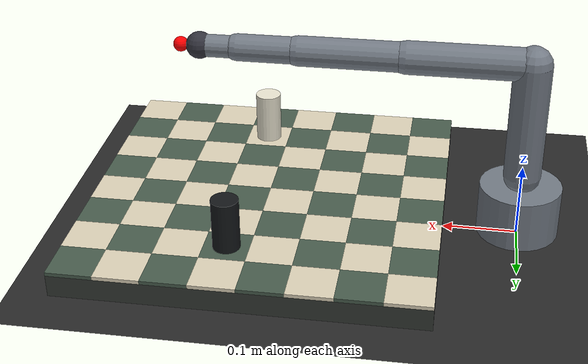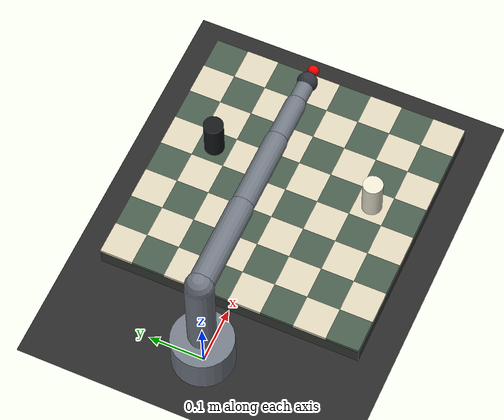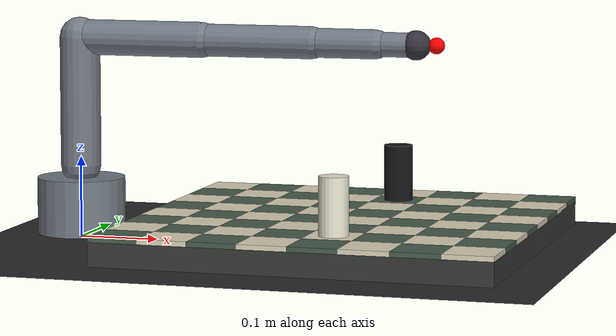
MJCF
<mujoco model="ai_chess_robot">
  <compiler angle="radian" meshdir="." autolimits="true"/>
  <option timestep="0.002" gravity="0 0 -9.81" integrator="implicitfast"/>

  <default>
    <geom friction="0.8 0.02 0.001" density="900"/>
    <joint damping="2.5" armature="0.04"/>
    <position kp="28" kv="7"/>
  </default>

  <asset>
    <material name="board_light" rgba="0.86 0.82 0.72 1"/>
    <material name="board_dark" rgba="0.28 0.36 0.30 1"/>
    <material name="robot_mat" rgba="0.45 0.48 0.52 1"/>
    <material name="piece_white" rgba="0.92 0.90 0.82 1"/>
    <material name="piece_black" rgba="0.08 0.09 0.10 1"/>
  </asset>

  <worldbody>
    <light pos="0 -1 1.5" dir="0 1 -1" diffuse="0.9 0.9 0.9"/>
    <geom name="floor" type="plane" size="1.4 1.4 0.02" rgba="0.16 0.16 0.16 1"/>

    <!--
      체스판은 시각적으로 8x8 칸을 표현하지만, 학습 성능을 위해
      개별 칸에는 복잡한 충돌 메시를 두지 않는다. 충돌은 아래 board_base
      박스 하나로 충분하다.
    -->
    <body name="board" pos="0.34 0 0.02">
      <geom name="board_base" type="box" size="0.24 0.24 0.015" rgba="0.20 0.22 0.20 1"/>

      <geom name="a1" type="box" pos="-0.21 -0.21 0.017" size="0.03 0.03 0.003" material="board_dark"/>
      <geom name="b1" type="box" pos="-0.15 -0.21 0.017" size="0.03 0.03 0.003" material="board_light"/>
      <geom name="c1" type="box" pos="-0.09 -0.21 0.017" size="0.03 0.03 0.003" material="board_dark"/>
      <geom name="d1" type="box" pos="-0.03 -0.21 0.017" size="0.03 0.03 0.003" material="board_light"/>
      <geom name="e1" type="box" pos="0.03 -0.21 0.017" size="0.03 0.03 0.003" material="board_dark"/>
      <geom name="f1" type="box" pos="0.09 -0.21 0.017" size="0.03 0.03 0.003" material="board_light"/>
      <geom name="g1" type="box" pos="0.15 -0.21 0.017" size="0.03 0.03 0.003" material="board_dark"/>
      <geom name="h1" type="box" pos="0.21 -0.21 0.017" size="0.03 0.03 0.003" material="board_light"/>
      <geom name="a2" type="box" pos="-0.21 -0.15 0.017" size="0.03 0.03 0.003" material="board_light"/>
      <geom name="b2" type="box" pos="-0.15 -0.15 0.017" size="0.03 0.03 0.003" material="board_dark"/>
      <geom name="c2" type="box" pos="-0.09 -0.15 0.017" size="0.03 0.03 0.003" material="board_light"/>
      <geom name="d2" type="box" pos="-0.03 -0.15 0.017" size="0.03 0.03 0.003" material="board_dark"/>
      <geom name="e2" type="box" pos="0.03 -0.15 0.017" size="0.03 0.03 0.003" material="board_light"/>
      <geom name="f2" type="box" pos="0.09 -0.15 0.017" size="0.03 0.03 0.003" material="board_dark"/>
      <geom name="g2" type="box" pos="0.15 -0.15 0.017" size="0.03 0.03 0.003" material="board_light"/>
      <geom name="h2" type="box" pos="0.21 -0.15 0.017" size="0.03 0.03 0.003" material="board_dark"/>
      <geom name="a3" type="box" pos="-0.21 -0.09 0.017" size="0.03 0.03 0.003" material="board_dark"/>
      <geom name="b3" type="box" pos="-0.15 -0.09 0.017" size="0.03 0.03 0.003" material="board_light"/>
      <geom name="c3" type="box" pos="-0.09 -0.09 0.017" size="0.03 0.03 0.003" material="board_dark"/>
      <geom name="d3" type="box" pos="-0.03 -0.09 0.017" size="0.03 0.03 0.003" material="board_light"/>
      <geom name="e3" type="box" pos="0.03 -0.09 0.017" size="0.03 0.03 0.003" material="board_dark"/>
      <geom name="f3" type="box" pos="0.09 -0.09 0.017" size="0.03 0.03 0.003" material="board_light"/>
      <geom name="g3" type="box" pos="0.15 -0.09 0.017" size="0.03 0.03 0.003" material="board_dark"/>
      <geom name="h3" type="box" pos="0.21 -0.09 0.017" size="0.03 0.03 0.003" material="board_light"/>
      <geom name="a4" type="box" pos="-0.21 -0.03 0.017" size="0.03 0.03 0.003" material="board_light"/>
      <geom name="b4" type="box" pos="-0.15 -0.03 0.017" size="0.03 0.03 0.003" material="board_dark"/>
      <geom name="c4" type="box" pos="-0.09 -0.03 0.017" size="0.03 0.03 0.003" material="board_light"/>
      <geom name="d4" type="box" pos="-0.03 -0.03 0.017" size="0.03 0.03 0.003" material="board_dark"/>
      <geom name="e4" type="box" pos="0.03 -0.03 0.017" size="0.03 0.03 0.003" material="board_light"/>
      <geom name="f4" type="box" pos="0.09 -0.03 0.017" size="0.03 0.03 0.003" material="board_dark"/>
      <geom name="g4" type="box" pos="0.15 -0.03 0.017" size="0.03 0.03 0.003" material="board_light"/>
      <geom name="h4" type="box" pos="0.21 -0.03 0.017" size="0.03 0.03 0.003" material="board_dark"/>
      <geom name="a5" type="box" pos="-0.21 0.03 0.017" size="0.03 0.03 0.003" material="board_dark"/>
      <geom name="b5" type="box" pos="-0.15 0.03 0.017" size="0.03 0.03 0.003" material="board_light"/>
      <geom name="c5" type="box" pos="-0.09 0.03 0.017" size="0.03 0.03 0.003" material="board_dark"/>
      <geom name="d5" type="box" pos="-0.03 0.03 0.017" size="0.03 0.03 0.003" material="board_light"/>
      <geom name="e5" type="box" pos="0.03 0.03 0.017" size="0.03 0.03 0.003" material="board_dark"/>
      <geom name="f5" type="box" pos="0.09 0.03 0.017" size="0.03 0.03 0.003" material="board_light"/>
      <geom name="g5" type="box" pos="0.15 0.03 0.017" size="0.03 0.03 0.003" material="board_dark"/>
      <geom name="h5" type="box" pos="0.21 0.03 0.017" size="0.03 0.03 0.003" material="board_light"/>
      <geom name="a6" type="box" pos="-0.21 0.09 0.017" size="0.03 0.03 0.003" material="board_light"/>
      <geom name="b6" type="box" pos="-0.15 0.09 0.017" size="0.03 0.03 0.003" material="board_dark"/>
      <geom name="c6" type="box" pos="-0.09 0.09 0.017" size="0.03 0.03 0.003" material="board_light"/>
      <geom name="d6" type="box" pos="-0.03 0.09 0.017" size="0.03 0.03 0.003" material="board_dark"/>
      <geom name="e6" type="box" pos="0.03 0.09 0.017" size="0.03 0.03 0.003" material="board_light"/>
      <geom name="f6" type="box" pos="0.09 0.09 0.017" size="0.03 0.03 0.003" material="board_dark"/>
      <geom name="g6" type="box" pos="0.15 0.09 0.017" size="0.03 0.03 0.003" material="board_light"/>
      <geom name="h6" type="box" pos="0.21 0.09 0.017" size="0.03 0.03 0.003" material="board_dark"/>
      <geom name="a7" type="box" pos="-0.21 0.15 0.017" size="0.03 0.03 0.003" material="board_dark"/>
      <geom name="b7" type="box" pos="-0.15 0.15 0.017" size="0.03 0.03 0.003" material="board_light"/>
      <geom name="c7" type="box" pos="-0.09 0.15 0.017" size="0.03 0.03 0.003" material="board_dark"/>
      <geom name="d7" type="box" pos="-0.03 0.15 0.017" size="0.03 0.03 0.003" material="board_light"/>
      <geom name="e7" type="box" pos="0.03 0.15 0.017" size="0.03 0.03 0.003" material="board_dark"/>
      <geom name="f7" type="box" pos="0.09 0.15 0.017" size="0.03 0.03 0.003" material="board_light"/>
      <geom name="g7" type="box" pos="0.15 0.15 0.017" size="0.03 0.03 0.003" material="board_dark"/>
      <geom name="h7" type="box" pos="0.21 0.15 0.017" size="0.03 0.03 0.003" material="board_light"/>
      <geom name="a8" type="box" pos="-0.21 0.21 0.017" size="0.03 0.03 0.003" material="board_light"/>
      <geom name="b8" type="box" pos="-0.15 0.21 0.017" size="0.03 0.03 0.003" material="board_dark"/>
      <geom name="c8" type="box" pos="-0.09 0.21 0.017" size="0.03 0.03 0.003" material="board_light"/>
      <geom name="d8" type="box" pos="-0.03 0.21 0.017" size="0.03 0.03 0.003" material="board_dark"/>
      <geom name="e8" type="box" pos="0.03 0.21 0.017" size="0.03 0.03 0.003" material="board_light"/>
      <geom name="f8" type="box" pos="0.09 0.21 0.017" size="0.03 0.03 0.003" material="board_dark"/>
      <geom name="g8" type="box" pos="0.15 0.21 0.017" size="0.03 0.03 0.003" material="board_light"/>
      <geom name="h8" type="box" pos="0.21 0.21 0.017" size="0.03 0.03 0.003" material="board_dark"/>

      <!--
        기물 예시: visual/collision 분리.
        실제 렌더링용 mesh를 쓰더라도 collision geom은 원기둥 primitive로 유지한다.
        이렇게 하면 접촉 계산량이 낮아져 headless 대량 시뮬레이션에서 유리하다.
      -->
      <body name="white_pawn_e2" pos="0.03 -0.15 0.055">
        <geom name="white_pawn_e2_collision" type="cylinder" size="0.018 0.035" material="piece_white"/>
      </body>
      <body name="black_pawn_e7" pos="0.03 0.15 0.055">
        <geom name="black_pawn_e7_collision" type="cylinder" size="0.018 0.035" material="piece_black"/>
      </body>
    </body>

    <!-- 단순 6자유도 로봇팔 예시. 실제 URDF/MJCF로 교체 가능한 경계다. -->
    <body name="robot_base" pos="0 0 0.04">
      <geom type="cylinder" size="0.055 0.035" material="robot_mat"/>
      <body name="link1" pos="0 0 0.05">
        <joint name="joint1" type="hinge" axis="0 0 1" range="-3.14 3.14"/>
        <geom type="capsule" fromto="0 0 0 0 0 0.16" size="0.025" material="robot_mat"/>
        <body name="link2" pos="0 0 0.16">
          <joint name="joint2" type="hinge" axis="0 1 0" range="-2.6 2.6"/>
          <geom type="capsule" fromto="0 0 0 0.16 0 0" size="0.022" material="robot_mat"/>
          <body name="link3" pos="0.16 0 0">
            <joint name="joint3" type="hinge" axis="0 1 0" range="-2.6 2.6"/>
            <geom type="capsule" fromto="0 0 0 0.14 0 0" size="0.02" material="robot_mat"/>
            <body name="link4" pos="0.14 0 0">
              <joint name="joint4" type="hinge" axis="1 0 0" range="-3.14 3.14"/>
              <geom type="capsule" fromto="0 0 0 0.08 0 0" size="0.018" material="robot_mat"/>
              <body name="link5" pos="0.08 0 0">
                <joint name="joint5" type="hinge" axis="0 1 0" range="-3.14 3.14"/>
                <geom type="capsule" fromto="0 0 0 0.05 0 0" size="0.015" material="robot_mat"/>
                <body name="tool" pos="0.05 0 0">
                  <joint name="joint6" type="hinge" axis="1 0 0" range="-3.14 3.14"/>
                  <geom type="sphere" size="0.018" rgba="0.2 0.2 0.24 1"/>
                  <site name="ee_site" pos="0.025 0 0" size="0.01" rgba="1 0 0 1"/>
                </body>
              </body>
            </body>
          </body>
        </body>
      </body>
    </body>
  </worldbody>

  <actuator>
    <position name="joint1" joint="joint1"/>
    <position name="joint2" joint="joint2"/>
    <position name="joint3" joint="joint3"/>
    <position name="joint4" joint="joint4"/>
    <position name="joint5" joint="joint5"/>
    <position name="joint6" joint="joint6"/>
  </actuator>
</mujoco>
